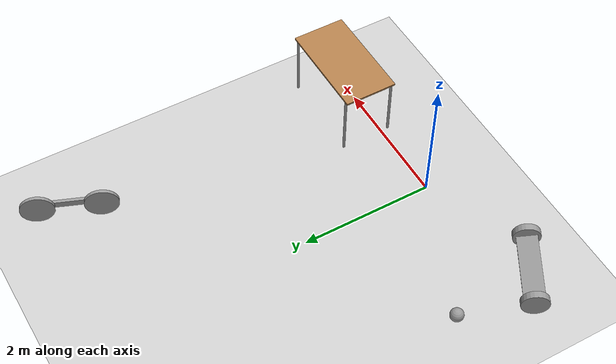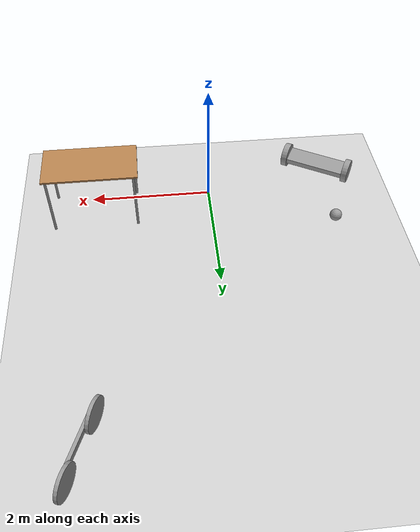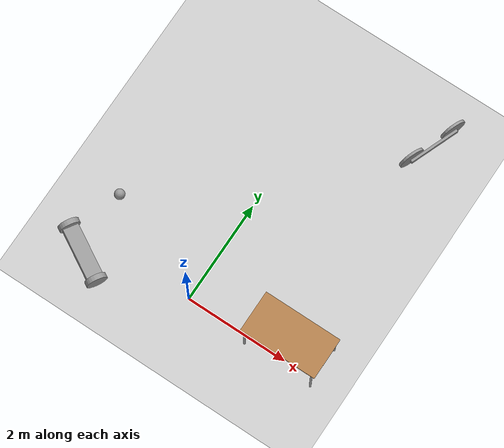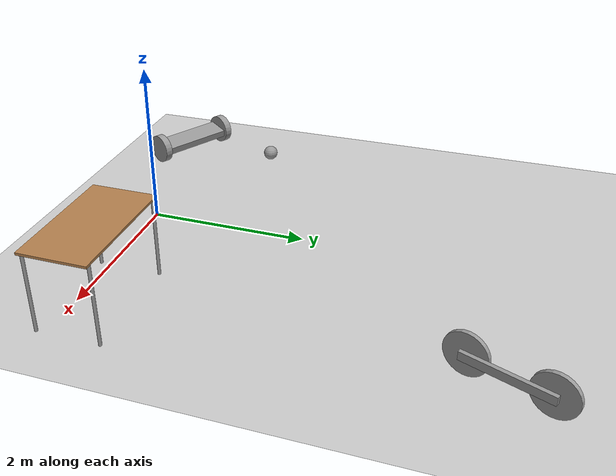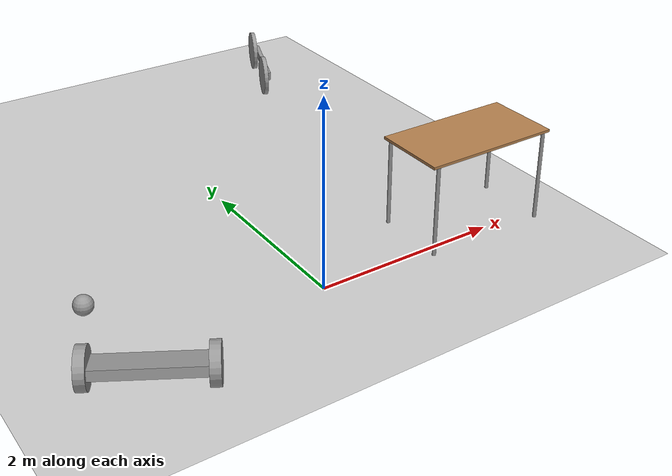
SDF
<sdf version="1.6">
 <world name="default">
  <model name="ground_plane">
   <static>1</static>
   <link name="link">
    <collision name="collision">
     <geometry><plane><normal>0 0 1</normal><size>100 100</size></plane></geometry>
     <surface>
      <contact><collide_bitmask>65535</collide_bitmask></contact>
      <friction><ode><mu>100</mu><mu2>50</mu2></ode></friction>
     </surface>
    </collision>
    <visual name="visual">
     <cast_shadows>0</cast_shadows>
     <geometry><plane><normal>0 0 1</normal><size>100 100</size></plane></geometry>
     <material>
      <script><uri>file://media/materials/scripts/gazebo.material</uri><name>Gazebo/Grey</name></script>
     </material>
    </visual>
   </link>
  </model>
  <model name="bicycle">
   <link name="link_2">
    <pose>0 0.04 0 0 -0 0</pose>
    <inertial>
     <mass>1</mass>
     <inertia>
      <ixx>0.166667</ixx>
      <ixy>0</ixy>
      <ixz>0</ixz>
      <iyy>0.166667</iyy>
      <iyz>0</iyz>
      <izz>0.166667</izz>
     </inertia>
    </inertial>
    <visual name="visual">
     <geometry><box><size>1 0.05 0.1</size></box></geometry>
     <material>
      <lighting>1</lighting>
      <script><uri>file://media/materials/scripts/gazebo.material</uri><name>Gazebo/Grey</name></script>
      <shader type="pixel"><normal_map>__default__</normal_map></shader>
      <ambient>0.3 0.3 0.3 1</ambient>
      <diffuse>0.7 0.7 0.7 1</diffuse>
      <specular>0.01 0.01 0.01 1</specular>
      <emissive>0 0 0 1</emissive>
     </material>
    </visual>
    <collision name="collision">
     <geometry><box><size>1 0.05 0.1</size></box></geometry>
     <surface>
      <friction>
       <ode><mu>1</mu><mu2>1</mu2><fdir1>0 0 0</fdir1><slip1>0</slip1><slip2>0</slip2></ode>
       <torsional>
        <coefficient>1</coefficient>
        <patch_radius>0</patch_radius>
        <surface_radius>0</surface_radius>
        <use_patch_radius>1</use_patch_radius>
        <ode><slip>0</slip></ode>
       </torsional>
      </friction>
      <bounce><restitution_coefficient>0</restitution_coefficient><threshold>1e+06</threshold></bounce>
      <contact>
       <collide_without_contact>0</collide_without_contact>
       <collide_without_contact_bitmask>1</collide_without_contact_bitmask>
       <collide_bitmask>1</collide_bitmask>
       <ode>
        <soft_cfm>0</soft_cfm>
        <soft_erp>0.2</soft_erp>
        <kp>1e+13</kp>
        <kd>1</kd>
        <max_vel>0.01</max_vel>
        <min_depth>0</min_depth>
       </ode>
       <bullet>
        <split_impulse>1</split_impulse>
        <split_impulse_penetration_threshold>-0.01</split_impulse_penetration_threshold>
        <soft_cfm>0</soft_cfm>
        <soft_erp>0.2</soft_erp>
        <kp>1e+13</kp>
        <kd>1</kd>
       </bullet>
      </contact>
     </surface>
    </collision>
   </link>
   <link name="link_3">
    <pose>-0.45 -0.02 0 0 -0 0</pose>
    <inertial>
     <mass>1</mass>
     <inertia><ixx>0.145833</ixx><ixy>0</ixy><ixz>0</ixz><iyy>0.145833</iyy><iyz>0</iyz><izz>0.125</izz></inertia>
    </inertial>
    <visual name="visual">
     <pose>0 0 0 1.5707 -0 0</pose>
     <geometry><cylinder><radius>0.25</radius><length>0.05</length></cylinder></geometry>
     <material>
      <lighting>1</lighting>
      <script><uri>file://media/materials/scripts/gazebo.material</uri><name>Gazebo/Grey</name></script>
      <shader type="pixel"><normal_map>__default__</normal_map></shader>
      <ambient>0.3 0.3 0.3 1</ambient>
      <diffuse>0.7 0.7 0.7 1</diffuse>
      <specular>0.01 0.01 0.01 1</specular>
      <emissive>0 0 0 1</emissive>
     </material>
    </visual>
    <collision name="collision">
     <pose>0 0 0 1.5707 -0 0</pose>
     <geometry><cylinder><radius>0.25</radius><length>0.05</length></cylinder></geometry>
     <surface>
      <friction>
       <ode><mu>1</mu><mu2>1</mu2><fdir1>0 0 0</fdir1><slip1>0</slip1><slip2>0</slip2></ode>
       <torsional>
        <coefficient>1</coefficient>
        <patch_radius>0</patch_radius>
        <surface_radius>0</surface_radius>
        <use_patch_radius>1</use_patch_radius>
        <ode><slip>0</slip></ode>
       </torsional>
      </friction>
      <bounce><restitution_coefficient>0</restitution_coefficient><threshold>1e+06</threshold></bounce>
      <contact>
       <collide_without_contact>0</collide_without_contact>
       <collide_without_contact_bitmask>1</collide_without_contact_bitmask>
       <collide_bitmask>1</collide_bitmask>
       <ode>
        <soft_cfm>0</soft_cfm>
        <soft_erp>0.2</soft_erp>
        <kp>1e+13</kp>
        <kd>1</kd>
        <max_vel>0.01</max_vel>
        <min_depth>0</min_depth>
       </ode>
       <bullet>
        <split_impulse>1</split_impulse>
        <split_impulse_penetration_threshold>-0.01</split_impulse_penetration_threshold>
        <soft_cfm>0</soft_cfm>
        <soft_erp>0.2</soft_erp>
        <kp>1e+13</kp>
        <kd>1</kd>
       </bullet>
      </contact>
     </surface>
    </collision>
   </link>
   <link name="link_3_clone">
    <pose>0.45 -0.02 0 0 -0 0</pose>
    <inertial>
     <mass>1</mass>
     <inertia><ixx>0.145833</ixx><ixy>0</ixy><ixz>0</ixz><iyy>0.145833</iyy><iyz>0</iyz><izz>0.125</izz></inertia>
    </inertial>
    <visual name="visual">
     <pose>0 0 0 1.5707 -0 0</pose>
     <geometry><cylinder><radius>0.25</radius><length>0.05</length></cylinder></geometry>
     <material>
      <lighting>1</lighting>
      <script><uri>file://media/materials/scripts/gazebo.material</uri><name>Gazebo/Grey</name></script>
      <shader type="pixel"><normal_map>__default__</normal_map></shader>
      <ambient>0.3 0.3 0.3 1</ambient>
      <diffuse>0.7 0.7 0.7 1</diffuse>
      <specular>0.01 0.01 0.01 1</specular>
      <emissive>0 0 0 1</emissive>
     </material>
    </visual>
    <collision name="collision">
     <pose>0 0 0 1.5707 -0 0</pose>
     <geometry><cylinder><radius>0.25</radius><length>0.05</length></cylinder></geometry>
     <surface>
      <friction>
       <ode><mu>1</mu><mu2>1</mu2><fdir1>0 0 0</fdir1><slip1>0</slip1><slip2>0</slip2></ode>
       <torsional>
        <coefficient>1</coefficient>
        <patch_radius>0</patch_radius>
        <surface_radius>0</surface_radius>
        <use_patch_radius>1</use_patch_radius>
        <ode><slip>0</slip></ode>
       </torsional>
      </friction>
      <bounce><restitution_coefficient>0</restitution_coefficient><threshold>1e+06</threshold></bounce>
      <contact>
       <collide_without_contact>0</collide_without_contact>
       <collide_without_contact_bitmask>1</collide_without_contact_bitmask>
       <collide_bitmask>1</collide_bitmask>
       <ode>
        <soft_cfm>0</soft_cfm>
        <soft_erp>0.2</soft_erp>
        <kp>1e+13</kp>
        <kd>1</kd>
        <max_vel>0.01</max_vel>
        <min_depth>0</min_depth>
       </ode>
       <bullet>
        <split_impulse>1</split_impulse>
        <split_impulse_penetration_threshold>-0.01</split_impulse_penetration_threshold>
        <soft_cfm>0</soft_cfm>
        <soft_erp>0.2</soft_erp>
        <kp>1e+13</kp>
        <kd>1</kd>
       </bullet>
      </contact>
     </surface>
    </collision>
   </link>
   <joint name="link_2_JOINT_5" type="revolute">
    <parent>link_2</parent>
    <child>link_3</child>
    <axis>
     <xyz>0 1 0</xyz>
     <use_parent_model_frame>0</use_parent_model_frame>
     <limit>
      <lower>-1.79769e+308</lower>
      <upper>1.79769e+308</upper>
      <effort>-1</effort>
      <velocity>-1</velocity>
     </limit>
     <dynamics>
      <spring_reference>0</spring_reference>
      <spring_stiffness>0</spring_stiffness>
      <damping>0</damping>
     </dynamics>
    </axis>
    <physics>
     <ode><limit><cfm>0</cfm><erp>0.2</erp></limit><suspension><cfm>0</cfm><erp>0.2</erp></suspension></ode>
    </physics>
   </joint>
   <joint name="link_2_JOINT_6" type="revolute">
    <parent>link_2</parent>
    <child>link_3_clone</child>
    <axis>
     <xyz>0 1 0</xyz>
     <use_parent_model_frame>0</use_parent_model_frame>
     <limit>
      <lower>-1.79769e+308</lower>
      <upper>1.79769e+308</upper>
      <effort>-1</effort>
      <velocity>-1</velocity>
     </limit>
     <dynamics>
      <spring_reference>0</spring_reference>
      <spring_stiffness>0</spring_stiffness>
      <damping>0</damping>
     </dynamics>
    </axis>
    <physics>
     <ode><limit><cfm>0</cfm><erp>0.2</erp></limit><suspension><cfm>0</cfm><erp>0.2</erp></suspension></ode>
    </physics>
   </joint>
   <static>0</static>
   <pose>2.04964 4.64056 0.250001 9.2e-05 -3e-06 -1.94512</pose>
  </model>
  <model name="segway">
   <link name="link_4">
    <inertial>
     <mass>1</mass>
     <inertia>
      <ixx>0.166667</ixx>
      <ixy>0</ixy>
      <ixz>0</ixz>
      <iyy>0.166667</iyy>
      <iyz>0</iyz>
      <izz>0.166667</izz>
     </inertia>
    </inertial>
    <visual name="visual">
     <geometry><box><size>0.3 1 0.1</size></box></geometry>
     <material>
      <lighting>1</lighting>
      <script><uri>file://media/materials/scripts/gazebo.material</uri><name>Gazebo/Grey</name></script>
      <shader type="pixel"><normal_map>__default__</normal_map></shader>
      <ambient>0.3 0.3 0.3 1</ambient>
      <diffuse>0.7 0.7 0.7 1</diffuse>
      <specular>0.01 0.01 0.01 1</specular>
      <emissive>0 0 0 1</emissive>
     </material>
    </visual>
    <collision name="collision">
     <geometry><box><size>0.3 1 0.1</size></box></geometry>
     <surface>
      <friction>
       <ode><mu>1</mu><mu2>1</mu2><fdir1>0 0 0</fdir1><slip1>0</slip1><slip2>0</slip2></ode>
       <torsional>
        <coefficient>1</coefficient>
        <patch_radius>0</patch_radius>
        <surface_radius>0</surface_radius>
        <use_patch_radius>1</use_patch_radius>
        <ode><slip>0</slip></ode>
       </torsional>
      </friction>
      <bounce><restitution_coefficient>0</restitution_coefficient><threshold>1e+06</threshold></bounce>
      <contact>
       <collide_without_contact>0</collide_without_contact>
       <collide_without_contact_bitmask>1</collide_without_contact_bitmask>
       <collide_bitmask>1</collide_bitmask>
       <ode>
        <soft_cfm>0</soft_cfm>
        <soft_erp>0.2</soft_erp>
        <kp>1e+13</kp>
        <kd>1</kd>
        <max_vel>0.01</max_vel>
        <min_depth>0</min_depth>
       </ode>
       <bullet>
        <split_impulse>1</split_impulse>
        <split_impulse_penetration_threshold>-0.01</split_impulse_penetration_threshold>
        <soft_cfm>0</soft_cfm>
        <soft_erp>0.2</soft_erp>
        <kp>1e+13</kp>
        <kd>1</kd>
       </bullet>
      </contact>
     </surface>
    </collision>
   </link>
   <link name="link_5">
    <pose>0 -0.550019 0 1.5707 -0 0</pose>
    <inertial>
     <mass>1</mass>
     <inertia><ixx>0.145833</ixx><ixy>0</ixy><ixz>0</ixz><iyy>0.145833</iyy><iyz>0</iyz><izz>0.125</izz></inertia>
    </inertial>
    <visual name="visual">
     <geometry><cylinder><radius>0.2</radius><length>0.1</length></cylinder></geometry>
     <material>
      <lighting>1</lighting>
      <script><uri>file://media/materials/scripts/gazebo.material</uri><name>Gazebo/Grey</name></script>
      <shader type="pixel"><normal_map>__default__</normal_map></shader>
      <ambient>0.3 0.3 0.3 1</ambient>
      <diffuse>0.7 0.7 0.7 1</diffuse>
      <specular>0.01 0.01 0.01 1</specular>
      <emissive>0 0 0 1</emissive>
     </material>
    </visual>
    <collision name="collision">
     <geometry><cylinder><radius>0.2</radius><length>0.1</length></cylinder></geometry>
     <surface>
      <friction>
       <ode><mu>1</mu><mu2>1</mu2><fdir1>0 0 0</fdir1><slip1>0</slip1><slip2>0</slip2></ode>
       <torsional>
        <coefficient>1</coefficient>
        <patch_radius>0</patch_radius>
        <surface_radius>0</surface_radius>
        <use_patch_radius>1</use_patch_radius>
        <ode><slip>0</slip></ode>
       </torsional>
      </friction>
      <bounce><restitution_coefficient>0</restitution_coefficient><threshold>1e+06</threshold></bounce>
      <contact>
       <collide_without_contact>0</collide_without_contact>
       <collide_without_contact_bitmask>1</collide_without_contact_bitmask>
       <collide_bitmask>1</collide_bitmask>
       <ode>
        <soft_cfm>0</soft_cfm>
        <soft_erp>0.2</soft_erp>
        <kp>1e+13</kp>
        <kd>1</kd>
        <max_vel>0.01</max_vel>
        <min_depth>0</min_depth>
       </ode>
       <bullet>
        <split_impulse>1</split_impulse>
        <split_impulse_penetration_threshold>-0.01</split_impulse_penetration_threshold>
        <soft_cfm>0</soft_cfm>
        <soft_erp>0.2</soft_erp>
        <kp>1e+13</kp>
        <kd>1</kd>
       </bullet>
      </contact>
     </surface>
    </collision>
   </link>
   <link name="link_5_clone">
    <pose>0 0.550019 0 1.5707 -0 0</pose>
    <inertial>
     <mass>1</mass>
     <inertia><ixx>0.145833</ixx><ixy>0</ixy><ixz>0</ixz><iyy>0.145833</iyy><iyz>0</iyz><izz>0.125</izz></inertia>
    </inertial>
    <visual name="visual">
     <geometry><cylinder><radius>0.2</radius><length>0.1</length></cylinder></geometry>
     <material>
      <lighting>1</lighting>
      <script><uri>file://media/materials/scripts/gazebo.material</uri><name>Gazebo/Grey</name></script>
      <shader type="pixel"><normal_map>__default__</normal_map></shader>
      <ambient>0.3 0.3 0.3 1</ambient>
      <diffuse>0.7 0.7 0.7 1</diffuse>
      <specular>0.01 0.01 0.01 1</specular>
      <emissive>0 0 0 1</emissive>
     </material>
    </visual>
    <collision name="collision">
     <geometry><cylinder><radius>0.2</radius><length>0.1</length></cylinder></geometry>
     <surface>
      <friction>
       <ode><mu>1</mu><mu2>1</mu2><fdir1>0 0 0</fdir1><slip1>0</slip1><slip2>0</slip2></ode>
       <torsional>
        <coefficient>1</coefficient>
        <patch_radius>0</patch_radius>
        <surface_radius>0</surface_radius>
        <use_patch_radius>1</use_patch_radius>
        <ode><slip>0</slip></ode>
       </torsional>
      </friction>
      <bounce><restitution_coefficient>0</restitution_coefficient><threshold>1e+06</threshold></bounce>
      <contact>
       <collide_without_contact>0</collide_without_contact>
       <collide_without_contact_bitmask>1</collide_without_contact_bitmask>
       <collide_bitmask>1</collide_bitmask>
       <ode>
        <soft_cfm>0</soft_cfm>
        <soft_erp>0.2</soft_erp>
        <kp>1e+13</kp>
        <kd>1</kd>
        <max_vel>0.01</max_vel>
        <min_depth>0</min_depth>
       </ode>
       <bullet>
        <split_impulse>1</split_impulse>
        <split_impulse_penetration_threshold>-0.01</split_impulse_penetration_threshold>
        <soft_cfm>0</soft_cfm>
        <soft_erp>0.2</soft_erp>
        <kp>1e+13</kp>
        <kd>1</kd>
       </bullet>
      </contact>
     </surface>
    </collision>
   </link>
   <joint name="link_4_JOINT_7" type="revolute">
    <parent>link_4</parent>
    <child>link_5</child>
    <axis>
     <xyz>0 0 1</xyz>
     <use_parent_model_frame>0</use_parent_model_frame>
     <limit>
      <lower>-1.79769e+308</lower>
      <upper>1.79769e+308</upper>
      <effort>-1</effort>
      <velocity>-1</velocity>
     </limit>
     <dynamics>
      <spring_reference>0</spring_reference>
      <spring_stiffness>0</spring_stiffness>
      <damping>0</damping>
     </dynamics>
    </axis>
    <physics>
     <ode><limit><cfm>0</cfm><erp>0.2</erp></limit><suspension><cfm>0</cfm><erp>0.2</erp></suspension></ode>
    </physics>
   </joint>
   <joint name="link_4_JOINT_8" type="revolute">
    <parent>link_4</parent>
    <child>link_5_clone</child>
    <axis>
     <xyz>0 0 1</xyz>
     <use_parent_model_frame>0</use_parent_model_frame>
     <limit>
      <lower>-1.79769e+308</lower>
      <upper>1.79769e+308</upper>
      <effort>-1</effort>
      <velocity>-1</velocity>
     </limit>
     <dynamics>
      <spring_reference>0</spring_reference>
      <spring_stiffness>0</spring_stiffness>
      <damping>0</damping>
     </dynamics>
    </axis>
    <physics>
     <ode><limit><cfm>0</cfm><erp>0.2</erp></limit><suspension><cfm>0</cfm><erp>0.2</erp></suspension></ode>
    </physics>
   </joint>
   <static>0</static>
   <pose>-1.97786 -0.375873 0.200002 4e-06 0.185145 1.04658</pose>
  </model>
  <model name="table">
   <static>1</static>
   <link name="link">
    <collision name="surface">
     <pose>0 0 1 0 -0 0</pose>
     <geometry><box><size>1.5 0.8 0.03</size></box></geometry>
     <surface><friction><ode><mu>0.6</mu><mu2>0.6</mu2></ode></friction></surface>
    </collision>
    <visual name="visual1">
     <pose>0 0 1 0 -0 0</pose>
     <geometry><box><size>1.5 0.8 0.03</size></box></geometry>
     <material>
      <script><uri>file://media/materials/scripts/gazebo.material</uri><name>Gazebo/Wood</name></script>
     </material>
    </visual>
    <collision name="front_left_leg">
     <pose>0.68 0.38 0.5 0 -0 0</pose>
     <geometry><cylinder><radius>0.02</radius><length>1</length></cylinder></geometry>
    </collision>
    <visual name="front_left_leg">
     <pose>0.68 0.38 0.5 0 -0 0</pose>
     <geometry><cylinder><radius>0.02</radius><length>1</length></cylinder></geometry>
     <material>
      <script><uri>file://media/materials/scripts/gazebo.material</uri><name>Gazebo/Grey</name></script>
     </material>
    </visual>
    <collision name="front_right_leg">
     <pose>0.68 -0.38 0.5 0 -0 0</pose>
     <geometry><cylinder><radius>0.02</radius><length>1</length></cylinder></geometry>
    </collision>
    <visual name="front_right_leg">
     <pose>0.68 -0.38 0.5 0 -0 0</pose>
     <geometry><cylinder><radius>0.02</radius><length>1</length></cylinder></geometry>
     <material>
      <script><uri>file://media/materials/scripts/gazebo.material</uri><name>Gazebo/Grey</name></script>
     </material>
    </visual>
    <collision name="back_right_leg">
     <pose>-0.68 -0.38 0.5 0 -0 0</pose>
     <geometry><cylinder><radius>0.02</radius><length>1</length></cylinder></geometry>
    </collision>
    <visual name="back_right_leg">
     <pose>-0.68 -0.38 0.5 0 -0 0</pose>
     <geometry><cylinder><radius>0.02</radius><length>1</length></cylinder></geometry>
     <material>
      <script><uri>file://media/materials/scripts/gazebo.material</uri><name>Gazebo/Grey</name></script>
     </material>
    </visual>
    <collision name="back_left_leg">
     <pose>-0.68 0.38 0.5 0 -0 0</pose>
     <geometry><cylinder><radius>0.02</radius><length>1</length></cylinder></geometry>
    </collision>
    <visual name="back_left_leg">
     <pose>-0.68 0.38 0.5 0 -0 0</pose>
     <geometry><cylinder><radius>0.02</radius><length>1</length></cylinder></geometry>
     <material>
      <script><uri>file://media/materials/scripts/gazebo.material</uri><name>Gazebo/Grey</name></script>
     </material>
    </visual>
   </link>
   <pose>1.92045 0.258937 0 0 -0 0</pose>
  </model>
  <model name="my_ball">
   <link name="link">
    <inertial>
     <mass>1</mass>
     <inertia><ixx>0.1</ixx><ixy>0</ixy><ixz>0</ixz><iyy>0.1</iyy><iyz>0</iyz><izz>0.1</izz></inertia>
    </inertial>
    <visual name="visual">
     <geometry><sphere><radius>0.1</radius></sphere></geometry>
     <material>
      <script><name>Gazebo/Grey</name><uri>file://media/materials/scripts/gazebo.material</uri></script>
      <ambient>1 1 1 1</ambient>
      <diffuse>1 1 1 1</diffuse>
      <specular>1 1 1 1</specular>
      <emissive>1 1 1 1</emissive>
      <shader type="vertex"><normal_map>__default__</normal_map></shader>
     </material>
    </visual>
    <collision name="collision">
     <geometry><sphere><radius>0.1</radius></sphere></geometry>
     <surface>
      <friction>
       <ode><mu>1</mu><mu2>1</mu2><fdir1>0 0 0</fdir1><slip1>0</slip1><slip2>0</slip2></ode>
       <torsional>
        <coefficient>1</coefficient>
        <patch_radius>0</patch_radius>
        <surface_radius>0</surface_radius>
        <use_patch_radius>1</use_patch_radius>
        <ode><slip>0</slip></ode>
       </torsional>
      </friction>
      <bounce><restitution_coefficient>0</restitution_coefficient><threshold>1e+06</threshold></bounce>
      <contact>
       <collide_without_contact>0</collide_without_contact>
       <collide_without_contact_bitmask>1</collide_without_contact_bitmask>
       <collide_bitmask>1</collide_bitmask>
       <ode>
        <soft_cfm>0</soft_cfm>
        <soft_erp>0.2</soft_erp>
        <kp>1e+13</kp>
        <kd>1</kd>
        <max_vel>0.01</max_vel>
        <min_depth>0</min_depth>
       </ode>
       <bullet>
        <split_impulse>1</split_impulse>
        <split_impulse_penetration_threshold>-0.01</split_impulse_penetration_threshold>
        <soft_cfm>0</soft_cfm>
        <soft_erp>0.2</soft_erp>
        <kp>1e+13</kp>
        <kd>1</kd>
       </bullet>
      </contact>
     </surface>
    </collision>
   </link>
   <static>0</static>
   <pose>-2.05571 0.868641 0.1 0 -0 0</pose>
  </model>
 </world>
</sdf>
